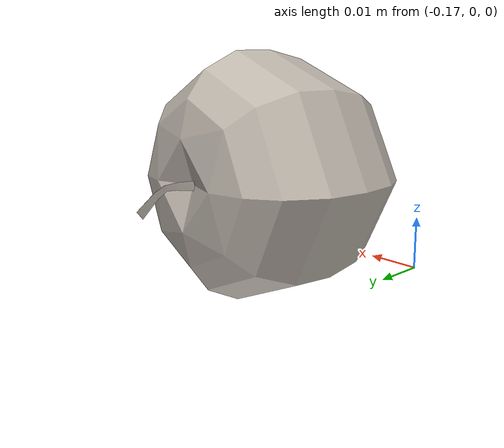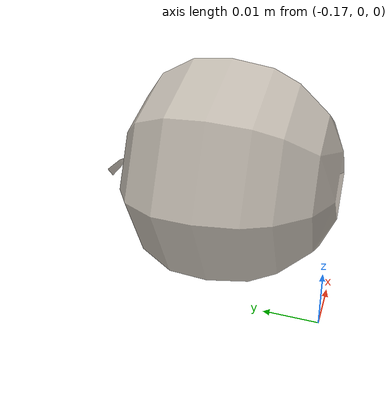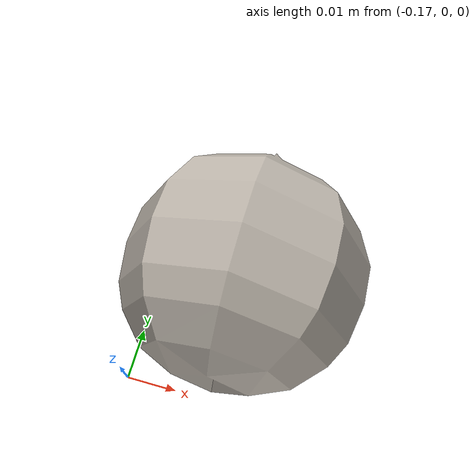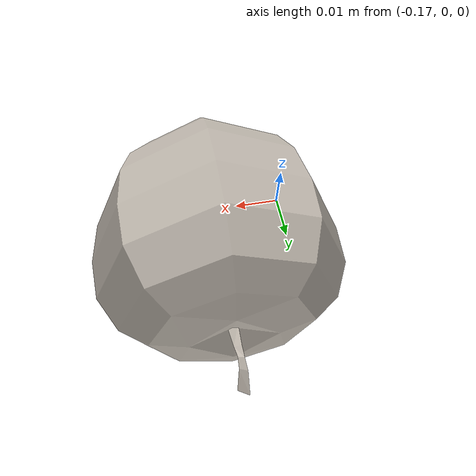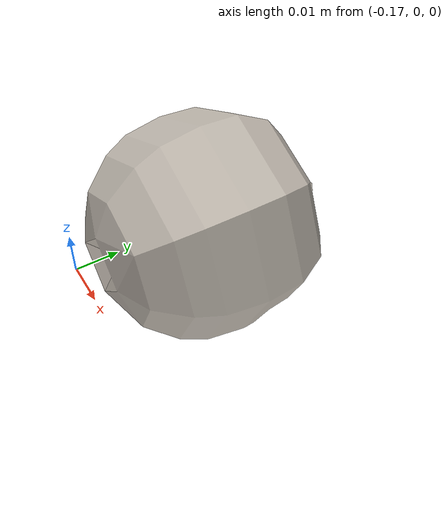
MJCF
<mujoco model="apple">
  <asset>
    <mesh file="meshes/apple.obj" name="apple_mesh" scale="2.5 2.5 2.5" />
    <texture file="../textures/apple_BaseMap.png" type="2d" name="tex-apple" />
    <material name="apple" reflectance="0.5" texture="tex-apple" texuniform="true" />
  </asset>
  <worldbody>
    <body>
      <body name="object">
        <freejoint name="apple_joint0" />
        <geom pos="0.00000 0.00000 0.00000" mesh="apple_mesh" type="mesh" solimp="0.998 0.998 0.001" solref="0.001 1" density="100" friction="3.0 0.3 0.1" material="apple" group="0" condim="4" />
      </body>
      <site rgba="0 0 0 0" size="0.005" pos="0.00000 0.00000 -0.10000" name="bottom_site" />
      <site rgba="0 0 0 0" size="0.005" pos="0.00000 0.00000 0.10000" name="top_site" />
      <site rgba="0 0 0 0" size="0.005" pos="0.10000 0.00000 0.00000" name="horizontal_radius_site" />
    </body>
  </worldbody>
</mujoco>
